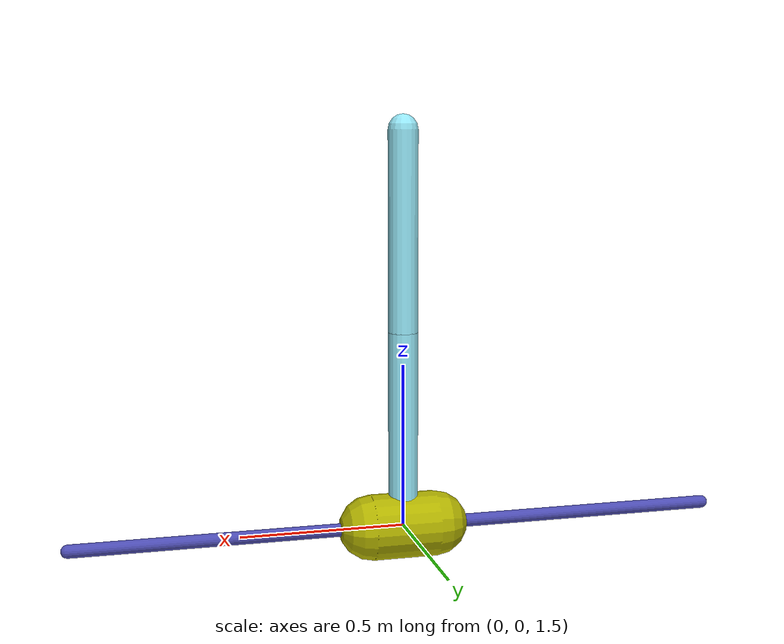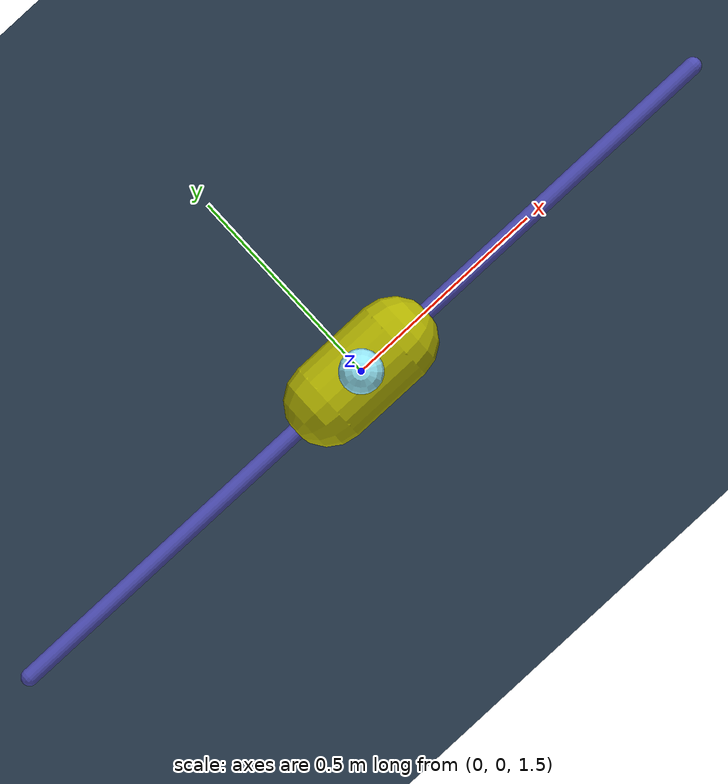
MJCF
<mujoco model="cartpole">
    <include file="../world.xml"/>
    <compiler coordinate="local" inertiafromgeom="true"/>
    <custom>
        <numeric data="2" name="frame_skip"/>
    </custom>
    <default>
        <joint damping="0.05"/>
        <geom contype="0" friction="1 0.1 0.1"/>
    </default>
    <option gravity="1e-5 0 -9.81" integrator="RK4"/>
    <size nstack="3000"/>
    <worldbody>
        <geom name="rail" pos="0 0 1.5" quat="0.707 0 0.707 0" rgba="0.3 0.3 0.7 1" size="0.02 1" type="capsule"/>
        <body name="cart" pos="0 0 1.5">
            <joint axis="1 0 0" limited="true" margin="0.01" name="slider" pos="0 0 0" range="-1 1" type="slide"/>
            <geom name="cart" pos="0 0 0" quat="0.707 0 0.707 0" size="0.1 0.1" type="capsule" rgba="0.7 0.7 0 1"/>
            <body name="pole" pos="0 0 0">
                <joint axis="0 1 0" name="hinge" pos="0 0 0" type="hinge"/>
                <geom fromto="0 0 0 0 0 0.6" name="cpole" rgba="0.588 0.909 0.972 1" size="0.045 0.3" type="capsule"/>
                <body name="pole2" pos="0 0 0.6">
                    <joint axis="0 1 0" name="hinge2" pos="0 0 0" type="hinge"/>
                    <geom fromto="0 0 0 0 0 0.6" name="cpole2" rgba="0.588 0.909 0.972 1" size="0.045 0.3" type="capsule"/>
                    <site name="tip" pos="0 0 .6" size="0.01 0.01"/>
                </body>
            </body>
        </body>
    </worldbody>
    <actuator>
        <motor ctrllimited="true" ctrlrange="-1 1" gear="500" joint="slider" name="slide"/>
    </actuator>
</mujoco>

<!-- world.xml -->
<!-- ======================================================
    Model: Empty World
    Mujoco Version: 2.0.x
	Author: Jianfeng Gao
====================================================== -->

<mujoco>
    <statistic extent="2" meansize=".05"/>

    <option timestep="0.005" solver="Newton" iterations="30" tolerance="1e-10" jacobian="sparse" cone="pyramidal"/>

    <visual>
        <rgba haze="0.15 0.25 0.35 1"/>
        <quality shadowsize="2048"/>
        <map stiffness="700" shadowscale="0.5" fogstart="10" fogend="15" zfar="40" haze="0.3"/>
    </visual>

    <asset>
        <texture type="skybox" builtin="gradient" rgb1="0.3 0.5 0.7" rgb2="0 0 0" width="512" height="512"/>
        <texture name="texplane" type="2d" builtin="checker" rgb1=".2 .3 .4" rgb2=".1 0.15 0.2"
            width="512" height="512" mark="cross" markrgb=".8 .8 .8"/>
        <material name="matplane" reflectance="0.3" texture="texplane" texrepeat="1 1" texuniform="true"/>
    </asset>

    <worldbody>
        <light directional="true" diffuse=".4 .4 .4" specular="0.1 0.1 0.1" pos="0 0 5.0" dir="0 0 -1" castshadow="false"/>
        <light directional="true" diffuse=".6 .6 .6" specular="0.2 0.2 0.2" pos="0 0 4" dir="0 0 -1"/>

        <geom name="ground" type="plane" size="0 0 1" pos="0 0 0" quat="1 0 0 0" material="matplane" condim="1"/>

    </worldbody>
</mujoco>
